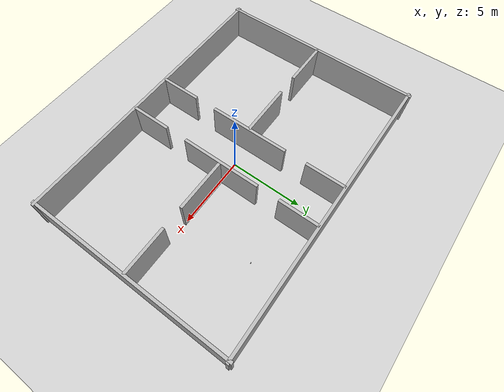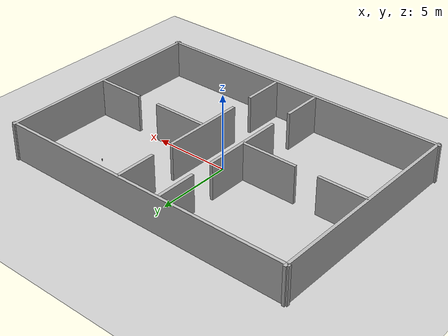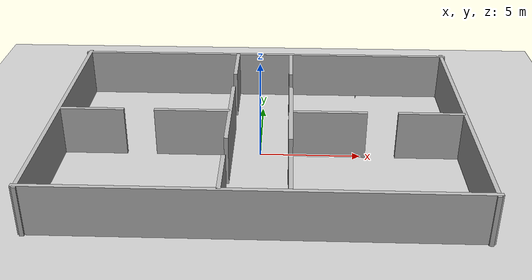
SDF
<sdf version="1.4">
 <world name="indoor_multi_room">
  <physics type="ode">
   <gravity>0 0 -9.81</gravity>
   <ode>
    <solver><type>quick</type><iters>20</iters><sor>1.0</sor></solver>
    <constraints>
     <cfm>0.0</cfm>
     <erp>0.2</erp>
     <contact_max_correcting_vel>100.0</contact_max_correcting_vel>
     <contact_surface_layer>0.0</contact_surface_layer>
    </constraints>
   </ode>
   <real_time_update_rate>1000</real_time_update_rate>
   <max_step_size>0.001</max_step_size>
  </physics>
  <include><uri>model://sun</uri></include>
  <include><uri>model://ground_plane</uri></include>
  <model name="wall_outer_north">
   <pose>0 7 1.25  0 0 0</pose>
   <static>true</static>
   <link name="link">
    <collision name="col"><geometry><box><size>20.4 0.2 2.5</size></box></geometry></collision>
    <visual name="vis"><geometry><box><size>20.4 0.2 2.5</size></box></geometry></visual>
   </link>
  </model>
  <model name="wall_outer_south">
   <pose>0 -7 1.25  0 0 0</pose>
   <static>true</static>
   <link name="link">
    <collision name="col"><geometry><box><size>20.4 0.2 2.5</size></box></geometry></collision>
    <visual name="vis"><geometry><box><size>20.4 0.2 2.5</size></box></geometry></visual>
   </link>
  </model>
  <model name="wall_outer_east">
   <pose>10 0 1.25  0 0 0</pose>
   <static>true</static>
   <link name="link">
    <collision name="col"><geometry><box><size>0.2 14.4 2.5</size></box></geometry></collision>
    <visual name="vis"><geometry><box><size>0.2 14.4 2.5</size></box></geometry></visual>
   </link>
  </model>
  <model name="wall_outer_west">
   <pose>-10 0 1.25  0 0 0</pose>
   <static>true</static>
   <link name="link">
    <collision name="col"><geometry><box><size>0.2 14.4 2.5</size></box></geometry></collision>
    <visual name="vis"><geometry><box><size>0.2 14.4 2.5</size></box></geometry></visual>
   </link>
  </model>
  <model name="wall_corr_left_s">
   <pose>-1.5 -5.625 1.25  0 0 0</pose>
   <static>true</static>
   <link name="link">
    <collision name="col"><geometry><box><size>0.2 2.75 2.5</size></box></geometry></collision>
    <visual name="vis"><geometry><box><size>0.2 2.75 2.5</size></box></geometry></visual>
   </link>
  </model>
  <model name="wall_corr_left_m">
   <pose>-1.5 0 1.25  0 0 0</pose>
   <static>true</static>
   <link name="link">
    <collision name="col"><geometry><box><size>0.2 5.5 2.5</size></box></geometry></collision>
    <visual name="vis"><geometry><box><size>0.2 5.5 2.5</size></box></geometry></visual>
   </link>
  </model>
  <model name="wall_corr_left_n">
   <pose>-1.5 5.625 1.25  0 0 0</pose>
   <static>true</static>
   <link name="link">
    <collision name="col"><geometry><box><size>0.2 2.75 2.5</size></box></geometry></collision>
    <visual name="vis"><geometry><box><size>0.2 2.75 2.5</size></box></geometry></visual>
   </link>
  </model>
  <model name="wall_corr_right_s">
   <pose>1.5 -5.625 1.25  0 0 0</pose>
   <static>true</static>
   <link name="link">
    <collision name="col"><geometry><box><size>0.2 2.75 2.5</size></box></geometry></collision>
    <visual name="vis"><geometry><box><size>0.2 2.75 2.5</size></box></geometry></visual>
   </link>
  </model>
  <model name="wall_corr_right_m">
   <pose>1.5 0 1.25  0 0 0</pose>
   <static>true</static>
   <link name="link">
    <collision name="col"><geometry><box><size>0.2 5.5 2.5</size></box></geometry></collision>
    <visual name="vis"><geometry><box><size>0.2 5.5 2.5</size></box></geometry></visual>
   </link>
  </model>
  <model name="wall_corr_right_n">
   <pose>1.5 5.625 1.25  0 0 0</pose>
   <static>true</static>
   <link name="link">
    <collision name="col"><geometry><box><size>0.2 2.75 2.5</size></box></geometry></collision>
    <visual name="vis"><geometry><box><size>0.2 2.75 2.5</size></box></geometry></visual>
   </link>
  </model>
  <model name="wall_inner_s1s2_w">
   <pose>-8.375 0 1.25  0 0 0</pose>
   <static>true</static>
   <link name="link">
    <collision name="col"><geometry><box><size>3.25 0.2 2.5</size></box></geometry></collision>
    <visual name="vis"><geometry><box><size>3.25 0.2 2.5</size></box></geometry></visual>
   </link>
  </model>
  <model name="wall_inner_s1s2_e">
   <pose>-3.375 0 1.25  0 0 0</pose>
   <static>true</static>
   <link name="link">
    <collision name="col"><geometry><box><size>3.75 0.2 2.5</size></box></geometry></collision>
    <visual name="vis"><geometry><box><size>3.75 0.2 2.5</size></box></geometry></visual>
   </link>
  </model>
  <model name="wall_inner_s3s4_w">
   <pose>3.375 0 1.25  0 0 0</pose>
   <static>true</static>
   <link name="link">
    <collision name="col"><geometry><box><size>3.75 0.2 2.5</size></box></geometry></collision>
    <visual name="vis"><geometry><box><size>3.75 0.2 2.5</size></box></geometry></visual>
   </link>
  </model>
  <model name="wall_inner_s3s4_e">
   <pose>8.375 0 1.25  0 0 0</pose>
   <static>true</static>
   <link name="link">
    <collision name="col"><geometry><box><size>3.25 0.2 2.5</size></box></geometry></collision>
    <visual name="vis"><geometry><box><size>3.25 0.2 2.5</size></box></geometry></visual>
   </link>
  </model>
  <include><uri>model://cocacola</uri><name>s3_cocacola</name><pose>5.08 4.85 0.86  0 0 0</pose></include>
  <plugin name="gazebo_ros_state" filename="libgazebo_ros_state.so">
   <ros><namespace>/gazebo</namespace></ros>
   <update_rate>10.0</update_rate>
  </plugin>
  <plugin name="gazebo_link_attacher" filename="libgazebo_link_attacher.so"/>
 </world>
</sdf>

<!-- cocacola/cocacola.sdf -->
<sdf version="1.4">
  <model name="cocacola">
  <allow_auto_disable>false</allow_auto_disable>
    <static>0</static>
    <link name="link_cocacola">

     <inertial>
        <mass>0.1</mass>
        <inertia>
          <ixx>0.000198</ixx>
          <ixy>0.000000</ixy>
          <ixz>0.000000</ixz>
          <iyy>0.000198</iyy>
          <iyz>0.000000</iyz>
          <izz>0.000020</izz>
        </inertia>
      </inertial>
      <collision name="collision">
        <pose>0 0 0.075 3.1416 0 0</pose>
        <geometry>
          <cylinder>
            <radius>0.02</radius>
            <length>0.15</length>
          </cylinder>
        </geometry>
        <surface>
          <friction>
            <ode>
              <mu>100.0</mu>       <!-- FONDAMENTALE: Frizione statica -->
              <mu2>100.0</mu2>     <!-- FONDAMENTALE: Frizione dinamica -->
            </ode>
          </friction>
          <contact>
            <ode>
              <kp>100000.0</kp>
              <kd>100.0</kd>
              <max_vel>0.00</max_vel>
              <min_depth>0.003</min_depth> <!-- Permette alle dita di compenetrare la lattina di 1 mm per generare presa -->
            </ode>
          </contact>
        </surface>
      </collision>
      <visual name="visual">
        <pose>0 0 0.075 3.1416 0 0</pose>
        <geometry>
          <cylinder>
            <radius>0.02</radius>
            <length>0.15</length>
          </cylinder>
        </geometry>
        <material>
          <script>
	      <uri>model://cocacola/material/scripts</uri>
	      <uri>model://cocacola/material/textures</uri>
              <name>Custom/cocacola</name>
          </script>
        </material>
      </visual>
      <velocity_decay>
        <linear>0.000000</linear>
        <angular>0.000000</angular>
      </velocity_decay>
      <self_collide>0</self_collide>
      <kinematic>0</kinematic>
      <gravity>1</gravity>
    </link>
  </model>
</sdf>
